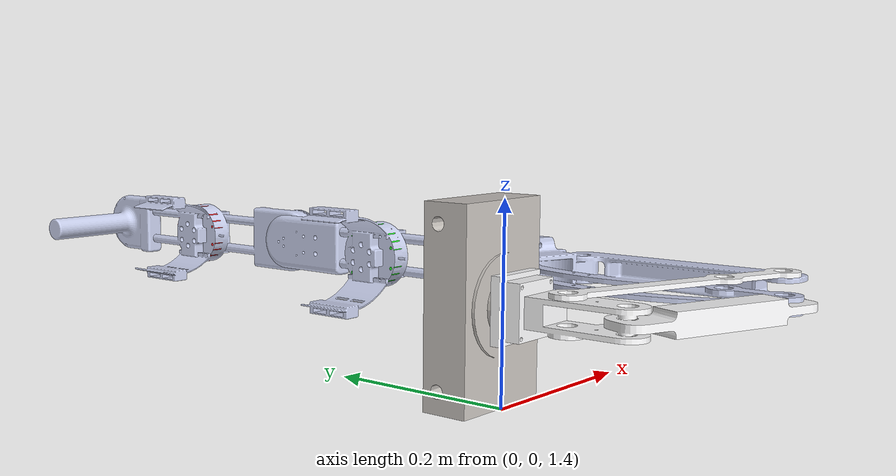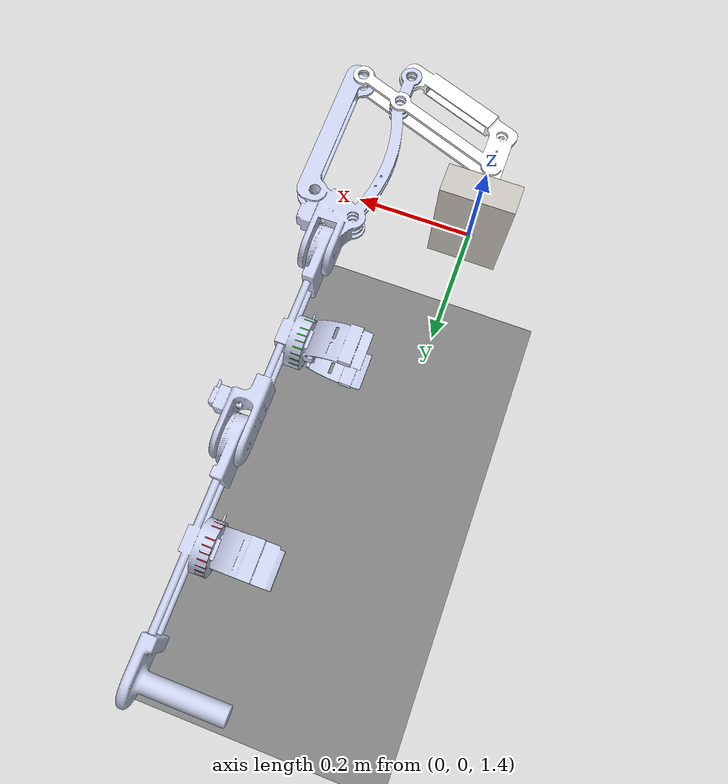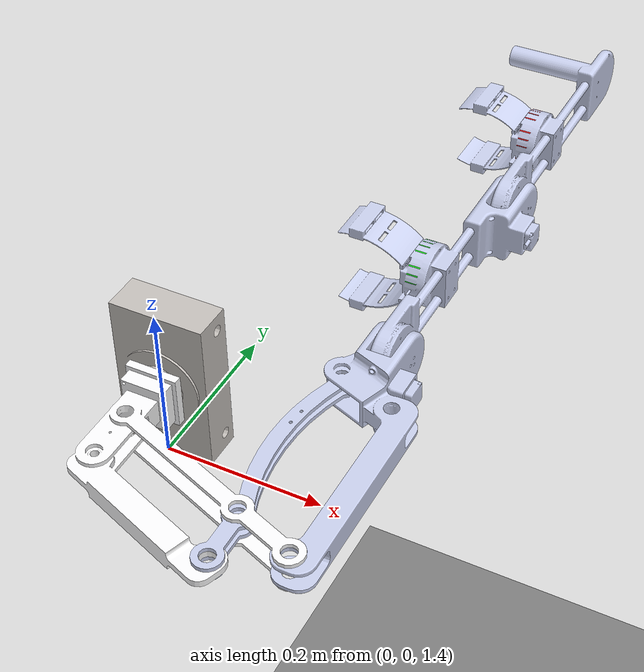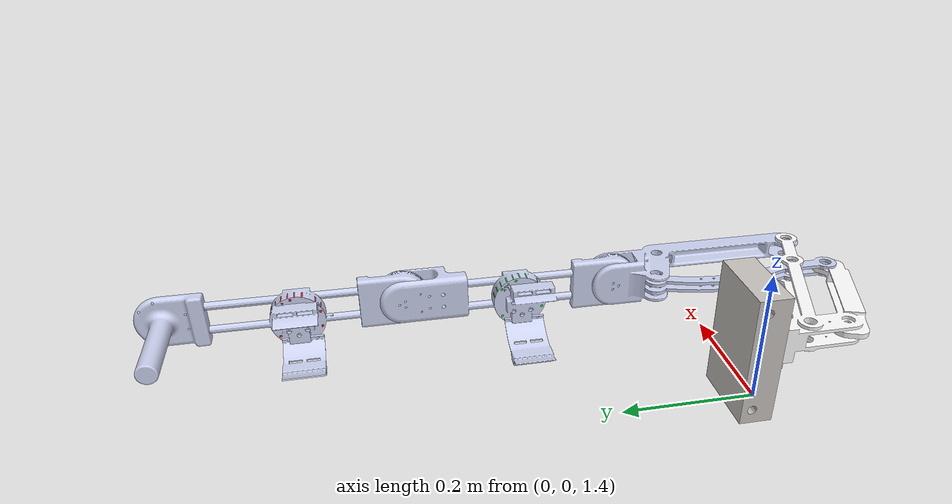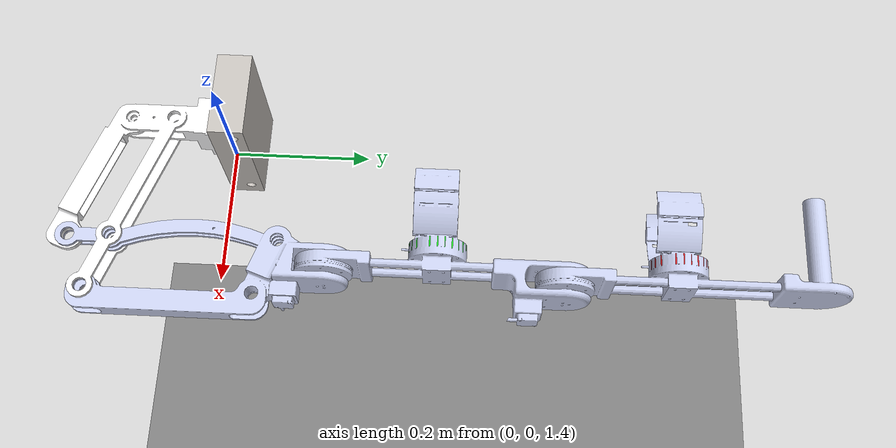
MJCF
<?xml version="1.0" encoding="UTF-8"?>
<mujoco model="ntuh3_gowork">
  <!-- 角度用弧度；坐标采用局部；网格从 ./meshes 目录读取 -->
  <compiler angle="radian" coordinate="local" meshdir="meshes"/>
  <option timestep="0.001" gravity="0 0 -9.81" integrator="RK4"/>

  <!-- 资源：STL 网格 -->
  <asset>
    <mesh name="back"       file="back.STL"/>
    <mesh name="linkage2"    file="linkage2.STL"/>
    <mesh name="linkage1"    file="linkage1.STL"/>
    <mesh name="upper_arm"  file="upper_arm.STL"/>
    <mesh name="lower_arm"  file="lower_arm.STL"/>

    <texture type="skybox" file="desert.png"
            gridsize="3 4" gridlayout=".U..LFRB.D.." />

    <texture name="plane" type="2d" builtin="checker" rgb1=".1 .1 .1" rgb2=".9 .9 .9"
            width="512" height="512" mark="cross" markrgb=".8 .8 .8" />

    <material name="plane" reflectance="0.3" texture="plane" texrepeat="1 1" texuniform="true" />
  </asset>

   <default>
    <joint damping="0.5" armature="0.001" frictionloss="0.5"/>
  </default>

  <!-- 视觉：可按需调整 -->
  <visual>
    <quality shadowsize="4096"/>
    <headlight diffuse="1 1 1" specular="0.4 0.4 0.4"/>
    <global offwidth="1280" offheight="720"/>
  </visual>

  <worldbody>
    <geom name="floor" pos="0 0 0" size="10 10 .1" type="plane" material="plane"
            condim="3" />
    <light directional="true" ambient=".3 .3 .3" pos="30 30 30" dir="0 -2 -1"
        diffuse=".5 .5 .5" specular=".5 .5 .5" />

    <!-- 根：back（等价于 URDF 的 world->back 固连） -->
    <body name="back" pos="0 0 1.5" euler="0 0 0">
      <!-- back 的惯性参数（URDF inertial→MJCF inertial）；pos 为惯性中心相对 body 的偏置 -->
      <inertial
        pos="-7.6509E-18 0.022801 -3.2321E-05"
        mass="1.7000"
        fullinertia="0.0037002 0.0047373 0.001517 4.8637E-20 2.284E-20 3.3421E-07"/>
      <!-- 用一个 geom mesh 既作可视也作碰撞（需要更细分可再加单独的碰撞 geom） -->
      <!-- 将back的碰撞设为0，应该不影响其计算动力学 -->
      <geom name="back_geom" type="mesh" mesh="back" rgba="0.77647 0.75686 0.73725 1" contype="0" conaffinity="0" />

      <!-- 这里linkage1往y轴负方向移动0.0025m,因为若不移动会与back发生物理碰撞，虽然实际上马达会转动，但建模不会，因此会导致出现问题 -->
      <!-- 另一种方式就是把back的contype 和 conaffinity 都设为0 ，这样会忽略back的碰撞特性，可以在之后对比两种方法对动力学计算之影响来处理  by nemo 2025/11/04 -->
      <body name="linkage1" pos="0 -0.0085 0" euler="0 0 0">
        <inertial
          pos="0.048055 -0.082283 -6.9819E-07"
          mass="0.27121"
          fullinertia="0.00019867 0.00075246 0.0008772 0.00024273 -2.3107E-10 -7.3137E-11"/>
        <geom name="linkage1_geom" type="mesh" mesh="linkage1" rgba="0.99608 0.99608 1 1" contype="1" conaffinity="1" condim="3"/>
        <joint name="sabd_joint" type="hinge" pos="0 0 0" axis="0 -1 0" range="-1.57 1.57"/>

        <body name="linkage2" pos="0.17854 -0.12598 0.0175" euler="0 0 0">
          <inertial
            pos="0.046208 0.1869 -0.017481"
            mass="0.42051"
            fullinertia="0.0015396 0.00021615 0.0015915 6.2855E-05 5.9213E-08 6.412E-09"/>
          <geom name="linkage2_geom" type="mesh" mesh="linkage2" rgba="0.79216 0.81961 0.93333 1" contype="1" conaffinity="1" condim="3"/>

          <!-- sfe_joint: parent=linkage -> child=upper_arm -->
          <!-- URDF joint origin: xyz="-5e-05 0.21038 -0.16824" rpy="3.1416 0 -1.5708" axis="-1 0 0" -->
          <body name="upper_arm" pos="0.028794 0.29481 -0.01745" euler="-1.5708 0 0">
            <inertial
              pos="-0.0070986 -4.5408E-07 0.1763"
              mass="0.62024"
              fullinertia="0.00069849 0.00060113 0.00033923 3.2506E-08 -1.6708E-05 4.1627E-09"/>
            <geom name="upper_arm_geom" type="mesh" mesh="upper_arm" rgba="0.79216 0.81961 0.93333 1" contype="1" conaffinity="1" condim="3"/>
            <joint name="sfe_joint" type="hinge" pos="0 0 0" axis="-1 0 0" range="-1.57 1.57"/>

            <!-- efe_joint: parent=upper_arm -> child=lower_arm -->
            <!-- URDF joint origin: xyz="-0.01 0 0.3285" rpy="0 0 0" axis="-1 0 0" -->

            <!-- 在这里新增 upper_fts body -->
            <!-- 上面移动了0.0025m，这边也要对应去掉 -->
            <body name="upper_fts" pos="-0.02895 0 0.15378" euler="0 1.5708 0">
              <geom name="upper_fts_geom" type="cylinder" size="0.040 0.0075" pos="0 0 0" rgba="0 1 0 0.8" contype="0" conaffinity="0"/>
            </body>

            <body name="lower_arm" pos="0.01 0 0.3285" euler="0 0 0">
              <inertial
                pos="-0.02423 2.3783E-07 0.18786"
                mass="0.58935"
                fullinertia="0.00059032 0.00081708 0.00062762 3.3784E-08 6.7084E-05 5.5099E-10"/>
              <geom name="lower_arm_geom" type="mesh" mesh="lower_arm" rgba="0.79216 0.81961 0.93333 1" contype="1" conaffinity="1" condim="3"/>
              <joint name="efe_joint" type="hinge" pos="0 0 0" axis="-1 0 0" range="-1.57 1.57"/>

              <body name="lower_fts" pos="-0.02895 0 0.15378" euler="0 1.5708 0">
                <geom name="lower_fts_geom" type="cylinder" size="0.040 0.0075" pos="0 0 0" rgba="1 0 0 0.8" contype="0" conaffinity="0"/>
              </body>
            </body>
          </body>
        </body>
      </body>
    </body>
  </worldbody>

  <!-- 执行器：给三个关节一个位置控制器（可按需调整 kp 与 forcerange） -->
  <actuator>
    <position name="act_sabd" joint="sabd_joint" kp="500" forcerange="-150 150" ctrlrange="-1.57 1.57"/>
    <position name="act_sfe"  joint="sfe_joint"  kp="500" forcerange="-150 150" ctrlrange="-1.57 1.57"/>
    <position name="act_efe"  joint="efe_joint"  kp="500" forcerange="-150 150" ctrlrange="-1.57 1.57"/>

  <!-- ctrl = 目标角度（弧度），forcerange = 关节力矩上限 -->
  </actuator>

  <actuator>

  </actuator>

</mujoco>
